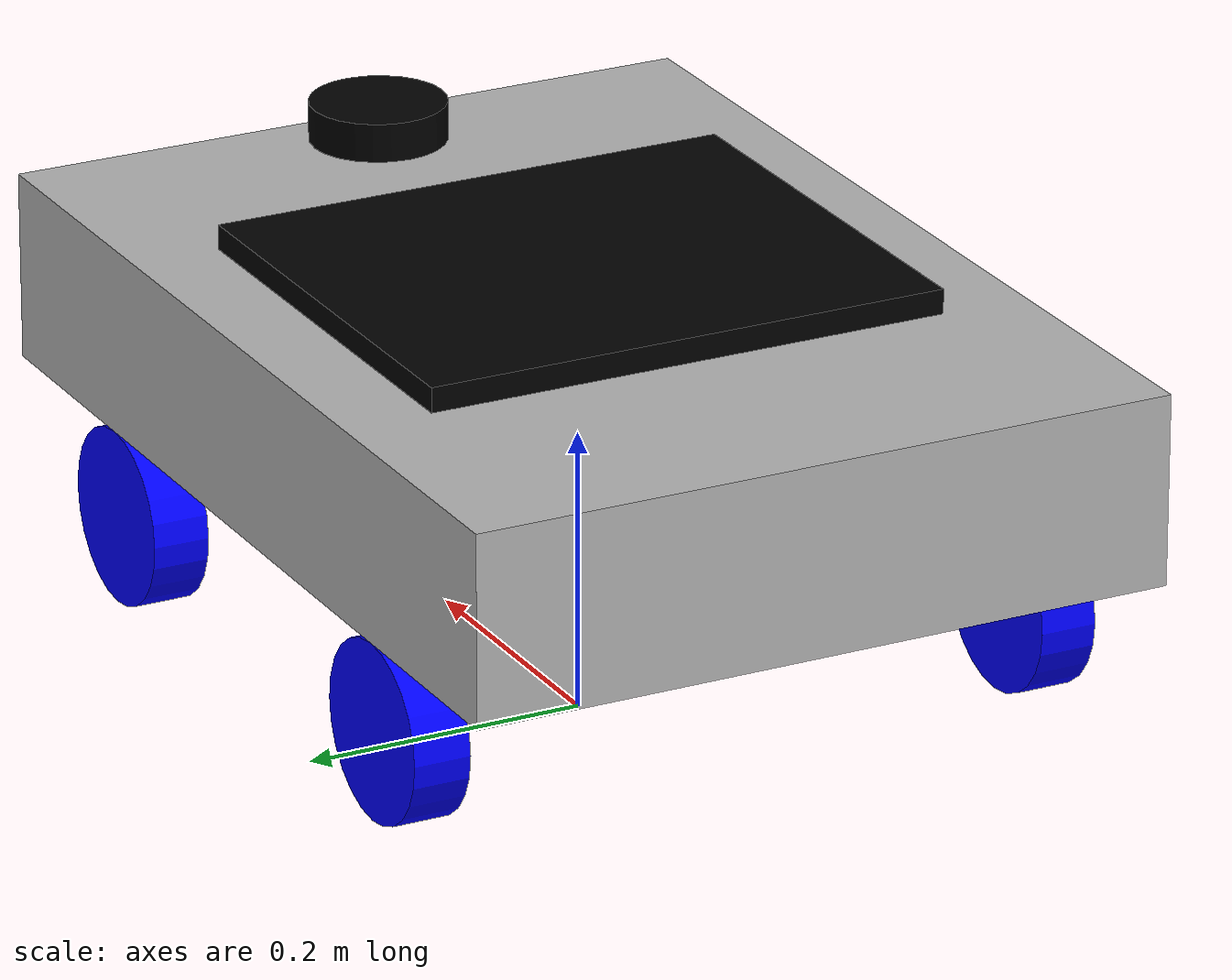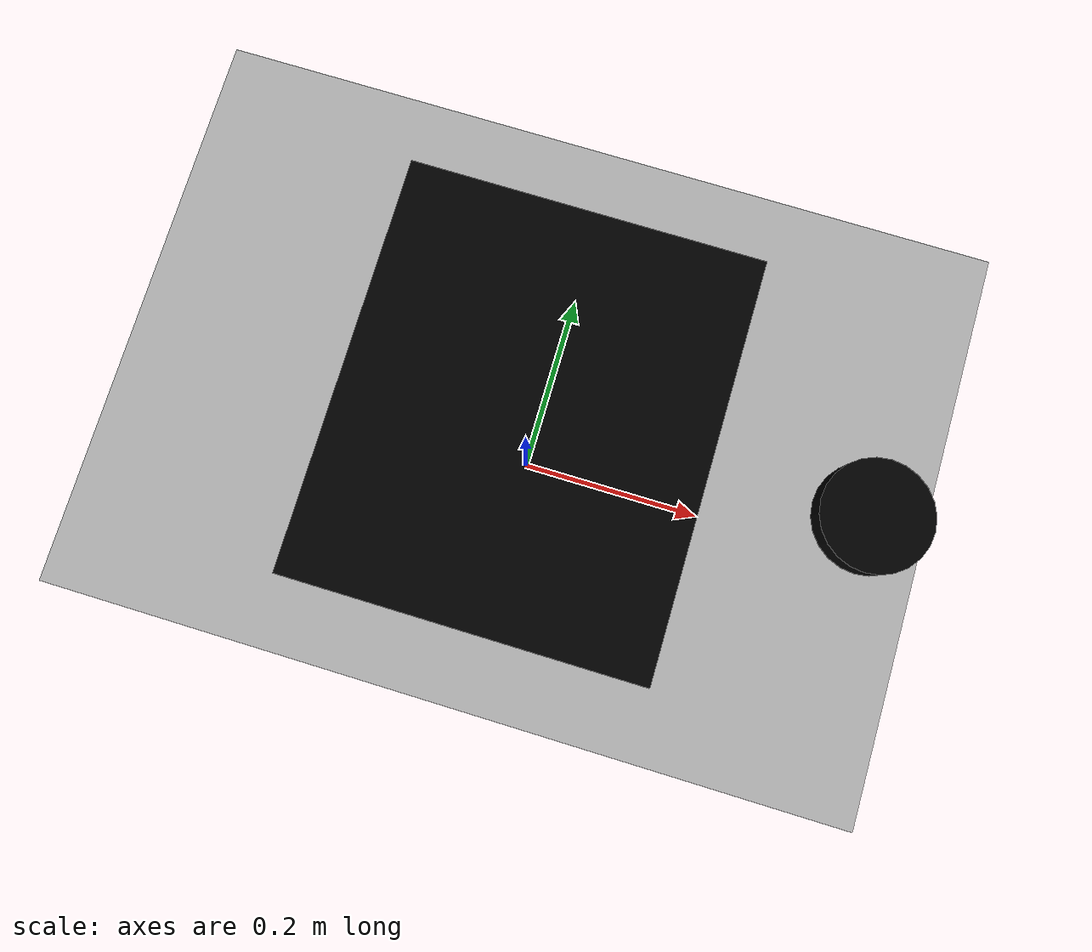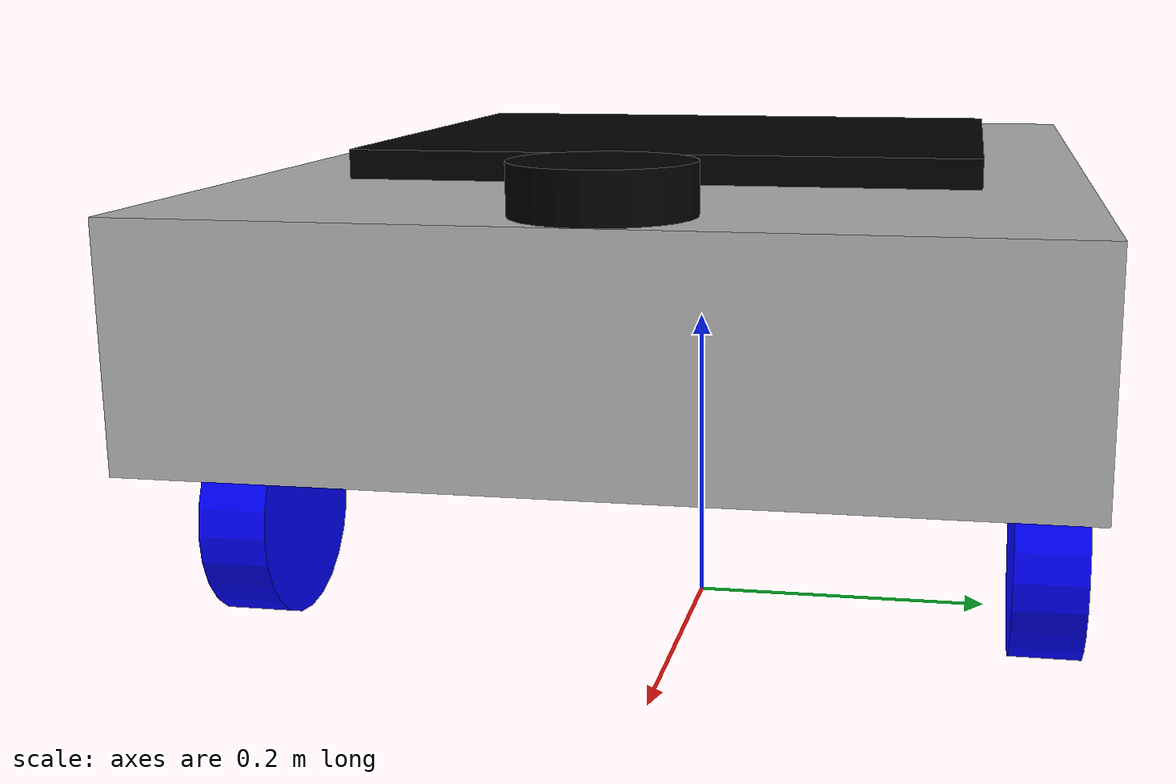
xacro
<?xml version="1.0"?>
<robot name="differential_drive_robot" xmlns:xacro="http://www.ros.org/wiki/xacro">

  <!-- MATERIALS -->
   <material name="gray">
     <!-- Base & lidar  -->
    <color rgba='.7 .7 .7 1.0' />
   </material>

   <material name="black">
    <!-- Lifter -->
    <color rgba='0 0 0 1' />
   </material>

   <material name='blue'>
    <!-- wheels -->
    <color rgba='0 0 1 1'/>
   </material>
  <!-- VARIABLES -->
  <xacro:property name="base_length" value="0.7"/>
  <xacro:property name="base_width"  value="0.5"/>
  <xacro:property name="base_height" value="0.134"/>
  <xacro:property name="wheel_radius" value="0.0625"/>
  <xacro:property name="wheel_width"  value="0.04"/>
  <xacro:property name="lidar_length" value=".055"/>
  <xacro:property name="lidar_radius" value="0.0484"/>
  <xacro:property name="lifter_length" value=".322"/>
  <xacro:property name="lifter_width" value=".375"/>
  <xacro:property name="lifter_height" value=".035"/>
  <!-- Inertia Functions -->
<xacro:macro name="box_inertia" params="m x y z o_xyz o_rpy">
  <inertial>
    <mass value="${m}" />
    <origin xyz="${o_xyz}" rpy="${o_rpy}" />
    <inertia
      ixx="${(m/12) * (z*z + y*y)}"
      ixy="0"
      ixz="0"
      iyy="${(m/12) * (x*x + z*z)}"
      iyz="0"
      izz="${(m/12) * (x*x + y*y)}"
    />
  </inertial>
</xacro:macro>

<xacro:macro name="cylinder_inertia" params="m r l o_xyz o_rpy">
  <inertial>
    <mass value="${m}" />
    <origin xyz="${o_xyz}" rpy="${o_rpy}" />
    <inertia
      ixx="${(m/12) * (3*r*r + l*l)}"
      ixy="0"
      ixz="0"
      iyy="${(m/12) * (3*r*r + l*l)}"
      iyz="0"
      izz="${(m/2) * (r*r)}"
    />
  </inertial>
</xacro:macro>

<!-- BASE LINK -->
<link name="base_link">
  <xacro:box_inertia m='4' x="${base_length}" y='${base_width}' z='${base_height}' o_xyz='0 0 ${(base_height/2)+(wheel_radius*2)}' o_rpy='0 0 0'/>

  <visual>
    <geometry>
      <box size="${base_length} ${base_width} ${base_height}"/>
    </geometry>
    <origin xyz='0 0 ${(base_height/2)+(wheel_radius*2)}' rpy='0 0 0 '/>
    <material name='gray'/>
  </visual>

  <collision>
    <geometry>
      <box size="${base_length} ${base_width} ${base_height}"/>
    </geometry>
    <origin xyz='0 0 ${(base_height/2)+(wheel_radius*2)}' rpy='0 0 0 '/>
    <material name='gray'/>
  </collision>
</link>
<!-- FOOTPRINT LINK -->
  <link name='base_footprint'/>
  <joint name="base_footprint_joint" type="fixed">
  <parent link="base_footprint"/>
  <child link="base_link"/>
  <origin xyz="0 0 0.05" rpy="0 0 0"/>
</joint>

  <!-- IMU LINK -->

  <!-- 4 WHEELS -->
  <!-- Back LEFT WHEEL -->
<link name="wheel_back_left">
    <xacro:cylinder_inertia m="0.15" r="${wheel_radius}" l="${wheel_width}" o_xyz="0 0 0" o_rpy="1.5708 0 0"/>

    <visual>
      <geometry>
        <cylinder radius="${wheel_radius}" length="${wheel_width}"/>
      </geometry>
      <origin xyz='0 0 0' rpy='1.5708 0 0'/>
      <material name='blue'/>
    </visual>

    <collision>
      <geometry>
        <cylinder radius="${wheel_radius}" length="${wheel_width}"/>
      </geometry>
      <origin xyz='0 0 0' rpy='1.5708 0 0'/>
      <material name='blue'/>
    </collision>
  </link>

  <joint name="joint_wheel_back_left" type="continuous">
    <parent link="base_link"/>
    <child link="wheel_back_left"/>
    <origin xyz='-.198 ${(base_width/2)-(wheel_width/2)} ${wheel_radius}' rpy='0 0 0 '/>
    <axis xyz="0 1 0"/>
    <limit effort='50000' velocity='10'/>
    <dynamics damping='1' friction='1'/>
  </joint>

  <!-- Front LEFT WHEEL -->
  <link name="wheel_front_left">
    <xacro:cylinder_inertia m="0.15" r="${wheel_radius}" l="${wheel_width}" o_xyz="0 0 0" o_rpy="1.5708 0 0"/>

    <visual>
      <geometry>
        <cylinder radius="${wheel_radius}" length="${wheel_width}"/>
      </geometry>
      <origin xyz='0 0 0' rpy='1.5708 0 0 '/>
      <material name='blue'/>
    </visual>

    <collision>
      <geometry>
        <cylinder radius="${wheel_radius}" length="${wheel_width}"/>
      </geometry>
      <origin xyz='0 0 0' rpy='1.5708 0 0 '/>
      <material name='blue'/>
    </collision>
  </link>

  <joint name="joint_wheel_front_left" type="continuous">
    <parent link="base_link"/>
    <child link="wheel_front_left"/>
    <origin xyz='.198 ${(base_width/2)-(wheel_width/2)} ${wheel_radius}' rpy='0 0 0 '/>
    <axis xyz="0 1 0"/>
    <limit effort='50000' velocity='10'/>
    <dynamics damping='1' friction='1'/>
  </joint>

  <!-- BACK RIGHT WHEEL -->
  <link name="wheel_back_right">
    <xacro:cylinder_inertia m="0.15" r="${wheel_radius}" l="${wheel_width}" o_xyz="0 0 0" o_rpy="1.5708 0 0"/>

    <visual>
      <geometry>
        <cylinder radius="${wheel_radius}" length="${wheel_width}"/>
      </geometry>
      <origin xyz='0 0 0' rpy='1.5708 0 0'/>
      <material name='blue'/>
    </visual>
    <collision>
     <geometry>
        <cylinder radius="${wheel_radius}" length="${wheel_width}"/>
      </geometry>
      <origin xyz='0 0 0' rpy='1.5708 0 0'/>
      <material name='blue'/>
    </collision>
  </link>

  <joint name="joint_wheel_back_right" type="continuous">
    <parent link="base_link"/>
    <child link="wheel_back_right"/>
    <origin xyz="-.198 ${-(base_width/2)+(wheel_width/2)} ${wheel_radius}" rpy="0 0 0"/>
    <axis xyz="0 1 0"/>
    <limit effort='50000' velocity='10'/>
    <dynamics damping='1' friction='1'/>
  </joint>

<!-- Front RIGHT WHEEL -->
  <link name="wheel_front_right">
    <xacro:cylinder_inertia m="0.15" r="${wheel_radius}" l="${wheel_width}" o_xyz="0 0 0" o_rpy="1.5708 0 0"/>

    <visual>
      <geometry>
        <cylinder radius="${wheel_radius}" length="${wheel_width}"/>
      </geometry>
      <origin xyz='0 0 0' rpy='1.5708 0 0'/>
      <material name='blue'/>
    </visual>
    <collision>
      <geometry>
        <cylinder radius="${wheel_radius}" length="${wheel_width}"/>
      </geometry>
      <origin xyz='0 0 0' rpy='1.5708 0 0'/>
      <material name='blue'/>
    </collision>
  </link>

  <joint name="joint_wheel_front_right" type="continuous">
    <parent link="base_link"/>
    <child link="wheel_front_right"/>
    <origin xyz=".198 ${-(base_width/2)+(wheel_width/2)} ${wheel_radius}" rpy="0 0 0"/>
    <axis xyz="0 1 0"/>
    <limit effort='50000' velocity='10'/>
    <dynamics damping='1' friction='1'/>
  </joint>
  <!-- LiDAR -->
  <!-- LiDAR Link -->
<link name="laser_frame">
  <xacro:cylinder_inertia m=".1" r="${lidar_radius}" l="${lidar_length}" o_xyz="0 0 0" o_rpy="0 0 0"/>
  <visual>
    <geometry>
      <cylinder radius="${lidar_radius}" length="${lidar_length}"/>
    </geometry>
    <material name="black"/>
    <origin xyz="0 0 0" rpy="0 0 0"/>
  </visual>

  <collision>
    <geometry>
      <cylinder radius="${lidar_radius}" length="${lidar_length}"/>
    </geometry>
    <material name="black"/>
    <origin xyz="0 0 0" rpy="0 0 0"/>
  </collision>
</link>

<joint name="laser_frame_joint" type="fixed">
  <parent link="base_link"/>
  <child link="laser_frame"/>
  <origin xyz="${(base_length/2)-lidar_radius} 0 ${(base_height+(wheel_radius*2))}" rpy="0 0 0"/>
</joint>

  <!-- Lifter -->

  <link name="lifter">
    <visual>
      <geometry>
        <box size="${lifter_length} ${lifter_width} ${lifter_height}"/>
      </geometry>
      <material name="black"/>
    </visual>
    <collision>
      <geometry>
        <box size="${lifter_length} ${lifter_width} ${lifter_height}"/>
      </geometry>
    </collision>
    <inertial>
      <mass value="1.0"/>
      <inertia ixx="0.01" iyy="0.01" izz="0.01" ixy="0" ixz="0" iyz="0"/>
    </inertial>
  </link>

  <joint name="Lifter_Movement" type="prismatic">
    <parent link="base_link"/>
    <child link="lifter"/>
    <origin xyz="0 0 ${(base_height+(wheel_radius*2))}" rpy="0 0 0"/>
    <axis xyz="0 0 1"/>
    <limit lower="0.0" upper="1" effort="500.0" velocity="1.0"/>
  </joint>

 <xacro:include filename="$(find mobile_robot)/model/robot.gazebo"/>
</robot>
